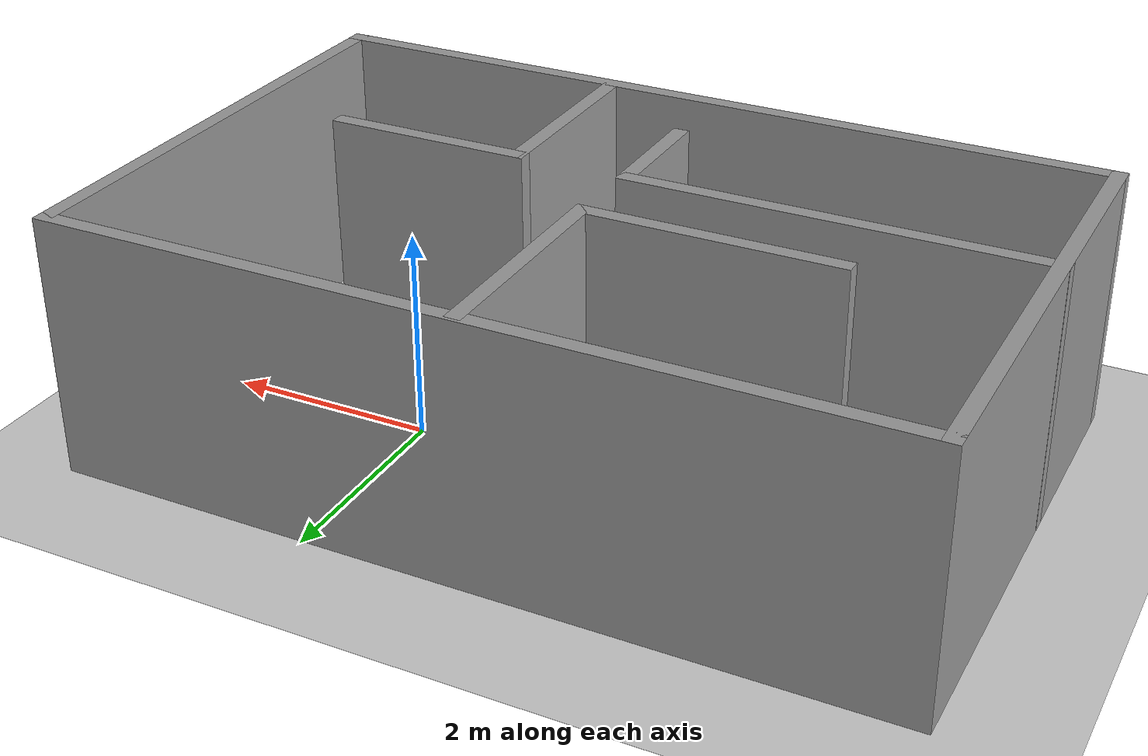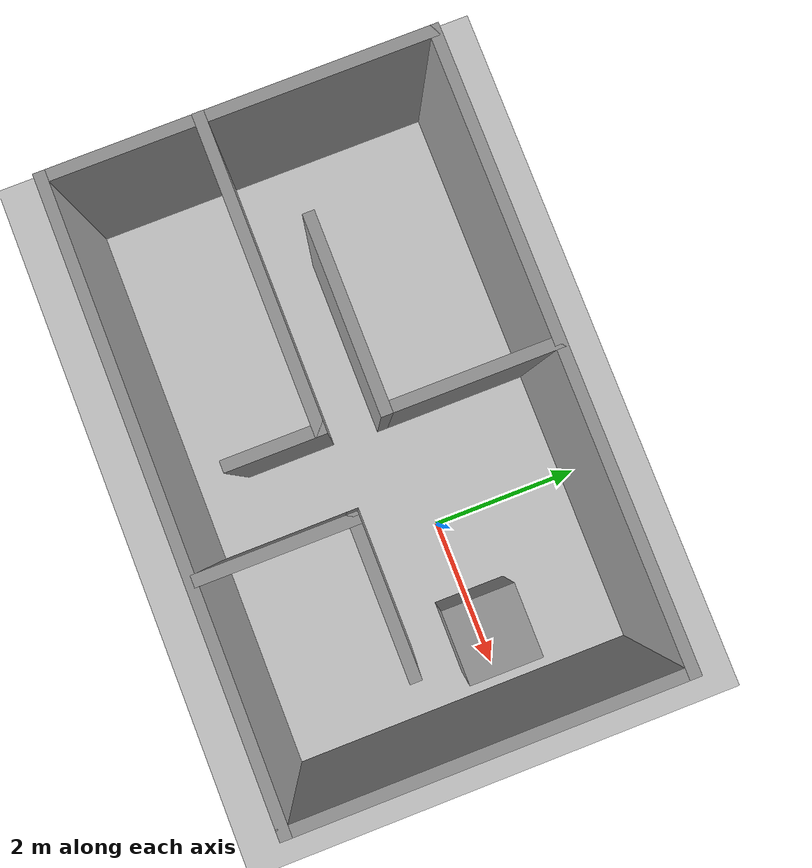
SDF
<sdf version="1.7">
 <world name="default">
  <light name="sun" type="directional">
   <pose>0 0 10 0 -0 0</pose>
   <diffuse>0.8 0.8 0.8 1</diffuse>
   <specular>0.2 0.2 0.2 1</specular>
   <attenuation>
    <range>1000</range>
    <constant>0.9</constant>
    <linear>0.01</linear>
    <quadratic>0.001</quadratic>
   </attenuation>
   <direction>-0.5 0.1 -0.9</direction>
   <spot><inner_angle>0</inner_angle><outer_angle>0</outer_angle><falloff>0</falloff></spot>
  </light>
  <model name="ground_plane">
   <static>1</static>
   <link name="link">
    <collision name="collision">
     <geometry><plane><normal>0 0 1</normal><size>100 100</size></plane></geometry>
     <surface><friction><ode><mu>100</mu><mu2>50</mu2></ode></friction></surface>
    </collision>
    <visual name="visual">
     <cast_shadows>0</cast_shadows>
     <geometry><plane><normal>0 0 1</normal><size>100 100</size></plane></geometry>
     <material>
      <script><uri>file://media/materials/scripts/gazebo.material</uri><name>Gazebo/Grey</name></script>
     </material>
    </visual>
   </link>
  </model>
  <gravity>0 0 -9.8</gravity>
  <magnetic_field>6e-06 2.3e-05 -4.2e-05</magnetic_field>
  <atmosphere type="adiabatic"/>
  <physics type="ode">
   <max_step_size>0.001</max_step_size>
   <real_time_factor>1</real_time_factor>
   <real_time_update_rate>1000</real_time_update_rate>
  </physics>
  <scene><ambient>0.4 0.4 0.4 1</ambient><background>0.7 0.7 0.7 1</background><shadows>1</shadows></scene>
  <audio><device>default</device></audio>
  <spherical_coordinates>
   <surface_model>EARTH_WGS84</surface_model>
   <latitude_deg>0</latitude_deg>
   <longitude_deg>0</longitude_deg>
   <elevation>0</elevation>
   <heading_deg>0</heading_deg>
  </spherical_coordinates>
  <model name="rome">
   <pose>-1.17203 -0.525479 0 0 -0 0</pose>
   <link name="Wall_10">
    <collision name="Wall_10_Collision">
     <geometry><box><size>2.25 0.15 2.5</size></box></geometry>
     <pose>0 0 1.25 0 -0 0</pose>
    </collision>
    <visual name="Wall_10_Visual">
     <pose>0 0 1.25 0 -0 0</pose>
     <geometry><box><size>2.25 0.15 2.5</size></box></geometry>
     <material>
      <script><uri>file://media/materials/scripts/gazebo.material</uri><name>Gazebo/Grey</name></script>
      <ambient>1 1 1 1</ambient>
     </material>
     <meta><layer>0</layer></meta>
    </visual>
    <pose>-0.373467 1.3447 0 0 -0 -1.5708</pose>
   </link>
   <link name="Wall_11">
    <collision name="Wall_11_Collision">
     <geometry><box><size>2.5 0.15 2.5</size></box></geometry>
     <pose>0 0 1.25 0 -0 0</pose>
    </collision>
    <visual name="Wall_11_Visual">
     <pose>0 0 1.25 0 -0 0</pose>
     <geometry><box><size>2.5 0.15 2.5</size></box></geometry>
     <material>
      <script><uri>file://media/materials/scripts/gazebo.material</uri><name>Gazebo/Grey</name></script>
      <ambient>1 1 1 1</ambient>
     </material>
     <meta><layer>0</layer></meta>
    </visual>
    <pose>-1.54847 0.294699 0 0 -0 3.14159</pose>
   </link>
   <link name="Wall_15">
    <collision name="Wall_15_Collision">
     <geometry><box><size>4 0.15 2.5</size></box></geometry>
     <pose>0 0 1.25 0 -0 0</pose>
    </collision>
    <visual name="Wall_15_Visual">
     <pose>0 0 1.25 0 -0 0</pose>
     <geometry><box><size>4 0.15 2.5</size></box></geometry>
     <material>
      <script><uri>file://media/materials/scripts/gazebo.material</uri><name>Gazebo/Grey</name></script>
      <ambient>1 1 1 1</ambient>
     </material>
     <meta><layer>0</layer></meta>
    </visual>
    <pose>-2.35017 -0.478647 0 0 -0 0</pose>
   </link>
   <link name="Wall_16">
    <collision name="Wall_16_Collision">
     <geometry><box><size>1.25 0.15 2.5</size></box></geometry>
     <pose>0 0 1.25 0 -0 0</pose>
    </collision>
    <visual name="Wall_16_Visual">
     <pose>0 0 1.25 0 -0 0</pose>
     <geometry><box><size>1.25 0.15 2.5</size></box></geometry>
     <material>
      <script><uri>file://media/materials/scripts/gazebo.material</uri><name>Gazebo/Grey</name></script>
      <ambient>1 1 1 1</ambient>
     </material>
     <meta><layer>0</layer></meta>
    </visual>
    <pose>-0.425169 -1.02865 0 0 -0 -1.5708</pose>
   </link>
   <link name="Wall_18">
    <collision name="Wall_18_Collision">
     <geometry><box><size>2 0.15 2.5</size></box></geometry>
     <pose>0 0 1.25 0 -0 0</pose>
    </collision>
    <visual name="Wall_18_Visual">
     <pose>0 0 1.25 0 -0 0</pose>
     <geometry><box><size>2 0.15 2.5</size></box></geometry>
     <material>
      <script><uri>file://media/materials/scripts/gazebo.material</uri><name>Gazebo/Grey</name></script>
      <ambient>1 1 1 1</ambient>
     </material>
     <meta><layer>0</layer></meta>
    </visual>
    <pose>0.654888 -1.40365 0 0 -0 -1.5708</pose>
   </link>
   <link name="Wall_20">
    <collision name="Wall_20_Collision">
     <geometry><box><size>2 0.15 2.5</size></box></geometry>
     <pose>0 0 1.25 0 -0 0</pose>
    </collision>
    <visual name="Wall_20_Visual">
     <pose>0 0 1.25 0 -0 0</pose>
     <geometry><box><size>2 0.15 2.5</size></box></geometry>
     <material>
      <script><uri>file://media/materials/scripts/gazebo.material</uri><name>Gazebo/Grey</name></script>
      <ambient>1 1 1 1</ambient>
     </material>
     <meta><layer>0</layer></meta>
    </visual>
    <pose>1.57989 -0.478647 0 0 -0 0</pose>
   </link>
   <link name="Wall_5">
    <collision name="Wall_5_Collision">
     <geometry><box><size>8 0.15 2.5</size></box></geometry>
     <pose>0 0 1.25 0 -0 0</pose>
    </collision>
    <visual name="Wall_5_Visual">
     <pose>0 0 1.25 0 -0 0</pose>
     <geometry><box><size>8 0.15 2.5</size></box></geometry>
     <material>
      <script><uri>file://media/materials/scripts/gazebo.material</uri><name>Gazebo/Grey</name></script>
      <ambient>1 1 1 1</ambient>
     </material>
     <meta><layer>0</layer></meta>
    </visual>
    <pose>-0.347839 2.42665 0 0 -0 0</pose>
   </link>
   <link name="Wall_6">
    <collision name="Wall_6_Collision">
     <geometry><box><size>5 0.15 2.5</size></box></geometry>
     <pose>0 0 1.25 0 -0 0</pose>
    </collision>
    <visual name="Wall_6_Visual">
     <pose>0 0 1.25 0 -0 0</pose>
     <geometry><box><size>5 0.15 2.5</size></box></geometry>
     <material>
      <script><uri>file://media/materials/scripts/gazebo.material</uri><name>Gazebo/Grey</name></script>
      <ambient>1 1 1 1</ambient>
     </material>
     <meta><layer>0</layer></meta>
    </visual>
    <pose>3.57716 0.001647 0 0 -0 -1.5708</pose>
   </link>
   <link name="Wall_7">
    <collision name="Wall_7_Collision">
     <geometry><box><size>8 0.15 2.5</size></box></geometry>
     <pose>0 0 1.25 0 -0 0</pose>
    </collision>
    <visual name="Wall_7_Visual">
     <pose>0 0 1.25 0 -0 0</pose>
     <geometry><box><size>8 0.15 2.5</size></box></geometry>
     <material>
      <script><uri>file://media/materials/scripts/gazebo.material</uri><name>Gazebo/Grey</name></script>
      <ambient>1 1 1 1</ambient>
     </material>
     <meta><layer>0</layer></meta>
    </visual>
    <pose>-0.347839 -2.42335 0 0 -0 3.14159</pose>
   </link>
   <link name="Wall_8">
    <collision name="Wall_8_Collision">
     <geometry><box><size>5 0.15 2.5</size></box></geometry>
     <pose>0 0 1.25 0 -0 0</pose>
    </collision>
    <visual name="Wall_8_Visual">
     <pose>0 0 1.25 0 -0 0</pose>
     <geometry><box><size>5 0.15 2.5</size></box></geometry>
     <material>
      <script><uri>file://media/materials/scripts/gazebo.material</uri><name>Gazebo/Grey</name></script>
      <ambient>1 1 1 1</ambient>
     </material>
     <meta><layer>0</layer></meta>
    </visual>
    <pose>-4.27284 0.001647 0 0 -0 1.5708</pose>
   </link>
   <static>1</static>
  </model>
  <model name="unit_box">
   <pose>1.49139 0.084793 0.499995 -1e-05 0 0</pose>
   <link name="link">
    <inertial>
     <mass>1</mass>
     <inertia>
      <ixx>0.166667</ixx>
      <ixy>0</ixy>
      <ixz>0</ixz>
      <iyy>0.166667</iyy>
      <iyz>0</iyz>
      <izz>0.166667</izz>
     </inertia>
    </inertial>
    <collision name="collision"><geometry><box><size>1 1 1</size></box></geometry></collision>
    <visual name="visual">
     <geometry><box><size>1 1 1</size></box></geometry>
     <material>
      <script><name>Gazebo/Grey</name><uri>file://media/materials/scripts/gazebo.material</uri></script>
     </material>
    </visual>
   </link>
  </model>
 </world>
</sdf>
